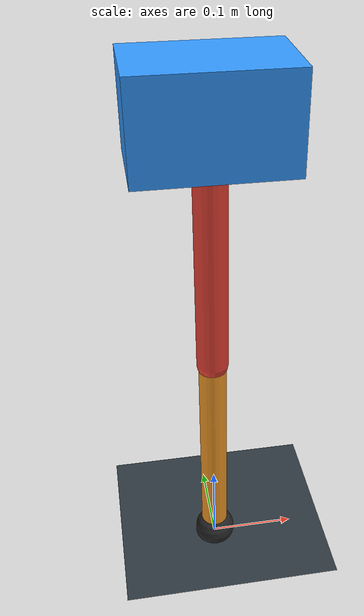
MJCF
<mujoco model="single_axis_two_bar">
  <compiler angle="radian" inertiafromgeom="true"/>
  <option timestep="0.001" integrator="implicitfast" gravity="0 0 -9.81"/>
  <default>
    <joint damping="0.08"/>
    <geom friction="1.2 0.01 0.0001" condim="3"/>
  </default>
  <worldbody>
    <geom name="floor" type="plane" size="5 5 0.1" rgba="0.18 0.22 0.25 1"/>
    <body name="carriage" pos="0 0 0.562465964716041">
      <joint name="pole_slide" type="slide" axis="0 0 1"/>
      <geom name="payload" type="box" size="0.08 0.05 0.05" mass="2.424142146058852" rgba="0.2 0.6 1 1"/>
      <body name="thigh" pos="0 0 0">
        <joint name="hip" type="hinge" axis="0 1 0"/>
        <geom name="thigh_link" type="capsule" fromto="0 0 0 0 0 -0.2873659667500146" size="0.018" mass="0.20475204851561468" rgba="0.9 0.25 0.2 1"/>
        <body name="shank" pos="0 0 -0.2873659667500146">
          <joint name="knee" type="hinge" axis="0 1 0"/>
          <geom name="shank_link" type="capsule" fromto="0 0 0 0 0 -0.2667226566685844" size="0.016" mass="0.19004341730531968" rgba="0.95 0.6 0.15 1"/>
          <geom name="foot" type="sphere" pos="0 0 -0.2667226566685844" size="0.025" mass="0.03" rgba="0.15 0.15 0.15 1"/>
          <site name="toe" pos="0 0 -0.2667226566685844" size="0.008"/>
        </body>
      </body>
    </body>
  </worldbody>
  <actuator>
    <motor name="hip_motor" joint="hip" ctrlrange="-21.09811105791311 21.09811105791311"/>
    <motor name="knee_motor" joint="knee" ctrlrange="-40.308857092600114 40.308857092600114"/>
  </actuator>
</mujoco>
